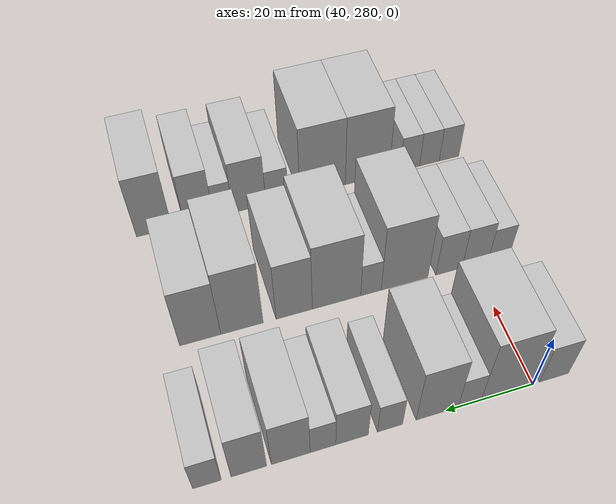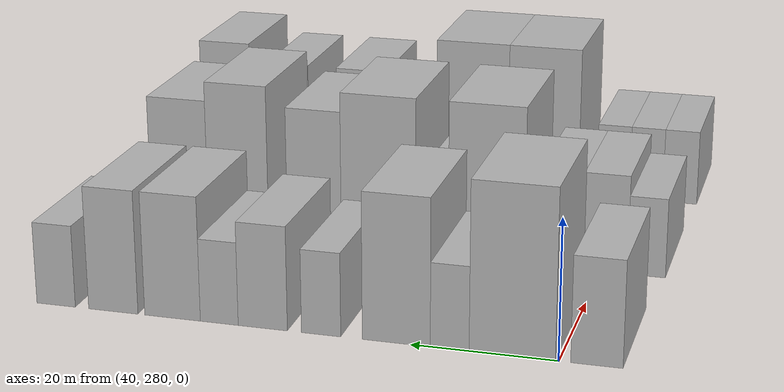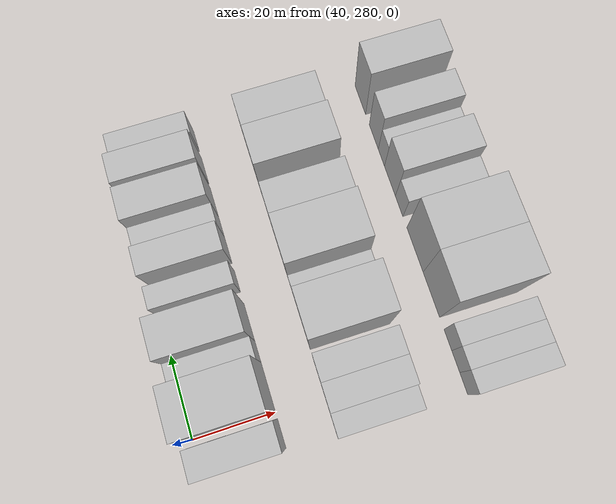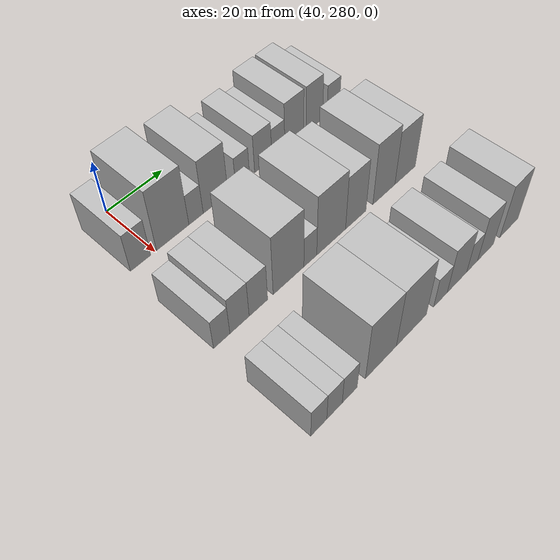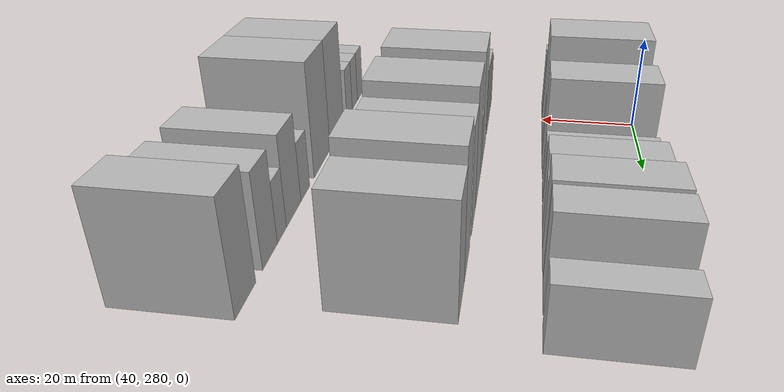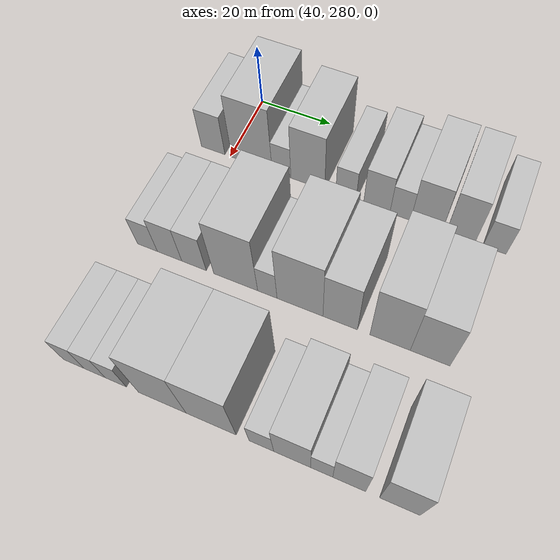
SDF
<sdf version="1.6">
 <world name="default">
  <model name="building_71">
   <static>1</static>
   <pose>50.0000 275.0531 0 0.000000 0.000000 0.000000</pose>
   <link name="link">
    <pose>0 0 7.50 0 0 0</pose>
    <collision name="collision"><geometry><box><size>20.0000 6.8625 15.0000</size></box></geometry></collision>
    <visual name="visual">
     <cast_shadows>0</cast_shadows>
     <geometry><box><size>20.0000 6.8625 15.0000</size></box></geometry>
     <material>
      <script>
       <uri>model://HANNAS_wall/materials/scripts</uri>
       <uri>model://HANNAS_wall/materials/textures</uri>
       <name>vrc/HANNAS_wall</name>
      </script>
     </material>
    </visual>
   </link>
  </model>
  <model name="building_72">
   <static>1</static>
   <pose>50.0000 286.2533 0 0.000000 0.000000 0.000000</pose>
   <link name="link">
    <pose>0 0 12.00 0 0 0</pose>
    <collision name="collision"><geometry><box><size>20.0000 11.5379 24.0000</size></box></geometry></collision>
    <visual name="visual">
     <cast_shadows>0</cast_shadows>
     <geometry><box><size>20.0000 11.5379 24.0000</size></box></geometry>
     <material>
      <script>
       <uri>model://HANNAS_wall/materials/scripts</uri>
       <uri>model://HANNAS_wall/materials/textures</uri>
       <name>vrc/HANNAS_wall</name>
      </script>
     </material>
    </visual>
   </link>
  </model>
  <model name="building_73">
   <static>1</static>
   <pose>50.0000 294.6577 0 0.000000 0.000000 0.000000</pose>
   <link name="link">
    <pose>0 0 6.00 0 0 0</pose>
    <collision name="collision"><geometry><box><size>20.0000 5.2709 12.0000</size></box></geometry></collision>
    <visual name="visual">
     <cast_shadows>0</cast_shadows>
     <geometry><box><size>20.0000 5.2709 12.0000</size></box></geometry>
     <material>
      <script>
       <uri>model://HANNAS_wall/materials/scripts</uri>
       <uri>model://HANNAS_wall/materials/textures</uri>
       <name>vrc/HANNAS_wall</name>
      </script>
     </material>
    </visual>
   </link>
  </model>
  <model name="building_74">
   <static>1</static>
   <pose>50.0000 301.9793 0 0.000000 0.000000 0.000000</pose>
   <link name="link">
    <pose>0 0 10.50 0 0 0</pose>
    <collision name="collision"><geometry><box><size>20.0000 9.3724 21.0000</size></box></geometry></collision>
    <visual name="visual">
     <cast_shadows>0</cast_shadows>
     <geometry><box><size>20.0000 9.3724 21.0000</size></box></geometry>
     <material>
      <script>
       <uri>model://HANNAS_wall/materials/scripts</uri>
       <uri>model://HANNAS_wall/materials/textures</uri>
       <name>vrc/HANNAS_wall</name>
      </script>
     </material>
    </visual>
   </link>
  </model>
  <model name="building_75">
   <static>1</static>
   <pose>50.0000 312.4241 0 0.000000 0.000000 0.000000</pose>
   <link name="link">
    <pose>0 0 6.00 0 0 0</pose>
    <collision name="collision"><geometry><box><size>20.0000 5.5172 12.0000</size></box></geometry></collision>
    <visual name="visual">
     <cast_shadows>0</cast_shadows>
     <geometry><box><size>20.0000 5.5172 12.0000</size></box></geometry>
     <material>
      <script>
       <uri>model://HANNAS_wall/materials/scripts</uri>
       <uri>model://HANNAS_wall/materials/textures</uri>
       <name>vrc/HANNAS_wall</name>
      </script>
     </material>
    </visual>
   </link>
  </model>
  <model name="building_76">
   <static>1</static>
   <pose>50.0000 320.6910 0 0.000000 0.000000 0.000000</pose>
   <link name="link">
    <pose>0 0 7.50 0 0 0</pose>
    <collision name="collision"><geometry><box><size>20.0000 7.0168 15.0000</size></box></geometry></collision>
    <visual name="visual">
     <cast_shadows>0</cast_shadows>
     <geometry><box><size>20.0000 7.0168 15.0000</size></box></geometry>
     <material>
      <script>
       <uri>model://HANNAS_wall/materials/scripts</uri>
       <uri>model://HANNAS_wall/materials/textures</uri>
       <name>vrc/HANNAS_wall</name>
      </script>
     </material>
    </visual>
   </link>
  </model>
  <model name="building_77">
   <static>1</static>
   <pose>50.0000 326.9324 0 0.000000 0.000000 0.000000</pose>
   <link name="link">
    <pose>0 0 6.00 0 0 0</pose>
    <collision name="collision"><geometry><box><size>20.0000 5.4659 12.0000</size></box></geometry></collision>
    <visual name="visual">
     <cast_shadows>0</cast_shadows>
     <geometry><box><size>20.0000 5.4659 12.0000</size></box></geometry>
     <material>
      <script>
       <uri>model://HANNAS_wall/materials/scripts</uri>
       <uri>model://HANNAS_wall/materials/textures</uri>
       <name>vrc/HANNAS_wall</name>
      </script>
     </material>
    </visual>
   </link>
  </model>
  <model name="building_78">
   <static>1</static>
   <pose>50.0000 333.7338 0 0.000000 0.000000 0.000000</pose>
   <link name="link">
    <pose>0 0 9.00 0 0 0</pose>
    <collision name="collision"><geometry><box><size>20.0000 8.1369 18.0000</size></box></geometry></collision>
    <visual name="visual">
     <cast_shadows>0</cast_shadows>
     <geometry><box><size>20.0000 8.1369 18.0000</size></box></geometry>
     <material>
      <script>
       <uri>model://HANNAS_wall/materials/scripts</uri>
       <uri>model://HANNAS_wall/materials/textures</uri>
       <name>vrc/HANNAS_wall</name>
      </script>
     </material>
    </visual>
   </link>
  </model>
  <model name="building_79">
   <static>1</static>
   <pose>50.0000 342.4698 0 0.000000 0.000000 0.000000</pose>
   <link name="link">
    <pose>0 0 9.00 0 0 0</pose>
    <collision name="collision"><geometry><box><size>20.0000 7.3350 18.0000</size></box></geometry></collision>
    <visual name="visual">
     <cast_shadows>0</cast_shadows>
     <geometry><box><size>20.0000 7.3350 18.0000</size></box></geometry>
     <material>
      <script>
       <uri>model://HANNAS_wall/materials/scripts</uri>
       <uri>model://HANNAS_wall/materials/textures</uri>
       <name>vrc/HANNAS_wall</name>
      </script>
     </material>
    </visual>
   </link>
  </model>
  <model name="building_80">
   <static>1</static>
   <pose>50.0000 351.0339 0 0.000000 0.000000 0.000000</pose>
   <link name="link">
    <pose>0 0 6.00 0 0 0</pose>
    <collision name="collision"><geometry><box><size>20.0000 5.7931 12.0000</size></box></geometry></collision>
    <visual name="visual">
     <cast_shadows>0</cast_shadows>
     <geometry><box><size>20.0000 5.7931 12.0000</size></box></geometry>
     <material>
      <script>
       <uri>model://HANNAS_wall/materials/scripts</uri>
       <uri>model://HANNAS_wall/materials/textures</uri>
       <name>vrc/HANNAS_wall</name>
      </script>
     </material>
    </visual>
   </link>
  </model>
  <model name="building_148">
   <static>1</static>
   <pose>82.0000 273.3419 0 0.000000 0.000000 0.000000</pose>
   <link name="link">
    <pose>0 0 6.00 0 0 0</pose>
    <collision name="collision"><geometry><box><size>20.0000 5.5061 12.0000</size></box></geometry></collision>
    <visual name="visual">
     <cast_shadows>0</cast_shadows>
     <geometry><box><size>20.0000 5.5061 12.0000</size></box></geometry>
     <material>
      <script>
       <uri>model://HANNAS_wall/materials/scripts</uri>
       <uri>model://HANNAS_wall/materials/textures</uri>
       <name>vrc/HANNAS_wall</name>
      </script>
     </material>
    </visual>
   </link>
  </model>
  <model name="building_149">
   <static>1</static>
   <pose>82.0000 279.4212 0 0.000000 0.000000 0.000000</pose>
   <link name="link">
    <pose>0 0 7.50 0 0 0</pose>
    <collision name="collision"><geometry><box><size>20.0000 6.6526 15.0000</size></box></geometry></collision>
    <visual name="visual">
     <cast_shadows>0</cast_shadows>
     <geometry><box><size>20.0000 6.6526 15.0000</size></box></geometry>
     <material>
      <script>
       <uri>model://HANNAS_wall/materials/scripts</uri>
       <uri>model://HANNAS_wall/materials/textures</uri>
       <name>vrc/HANNAS_wall</name>
      </script>
     </material>
    </visual>
   </link>
  </model>
  <model name="building_150">
   <static>1</static>
   <pose>82.0000 286.0291 0 0.000000 0.000000 0.000000</pose>
   <link name="link">
    <pose>0 0 7.50 0 0 0</pose>
    <collision name="collision"><geometry><box><size>20.0000 6.5633 15.0000</size></box></geometry></collision>
    <visual name="visual">
     <cast_shadows>0</cast_shadows>
     <geometry><box><size>20.0000 6.5633 15.0000</size></box></geometry>
     <material>
      <script>
       <uri>model://HANNAS_wall/materials/scripts</uri>
       <uri>model://HANNAS_wall/materials/textures</uri>
       <name>vrc/HANNAS_wall</name>
      </script>
     </material>
    </visual>
   </link>
  </model>
  <model name="building_151">
   <static>1</static>
   <pose>82.0000 297.0603 0 0.000000 0.000000 0.000000</pose>
   <link name="link">
    <pose>0 0 12.00 0 0 0</pose>
    <collision name="collision"><geometry><box><size>20.0000 11.4991 24.0000</size></box></geometry></collision>
    <visual name="visual">
     <cast_shadows>0</cast_shadows>
     <geometry><box><size>20.0000 11.4991 24.0000</size></box></geometry>
     <material>
      <script>
       <uri>model://HANNAS_wall/materials/scripts</uri>
       <uri>model://HANNAS_wall/materials/textures</uri>
       <name>vrc/HANNAS_wall</name>
      </script>
     </material>
    </visual>
   </link>
  </model>
  <model name="building_152">
   <static>1</static>
   <pose>82.0000 305.2937 0 0.000000 0.000000 0.000000</pose>
   <link name="link">
    <pose>0 0 6.00 0 0 0</pose>
    <collision name="collision"><geometry><box><size>20.0000 4.9678 12.0000</size></box></geometry></collision>
    <visual name="visual">
     <cast_shadows>0</cast_shadows>
     <geometry><box><size>20.0000 4.9678 12.0000</size></box></geometry>
     <material>
      <script>
       <uri>model://HANNAS_wall/materials/scripts</uri>
       <uri>model://HANNAS_wall/materials/textures</uri>
       <name>vrc/HANNAS_wall</name>
      </script>
     </material>
    </visual>
   </link>
  </model>
  <model name="building_153">
   <static>1</static>
   <pose>82.0000 313.5528 0 0.000000 0.000000 0.000000</pose>
   <link name="link">
    <pose>0 0 12.00 0 0 0</pose>
    <collision name="collision"><geometry><box><size>20.0000 11.5504 24.0000</size></box></geometry></collision>
    <visual name="visual">
     <cast_shadows>0</cast_shadows>
     <geometry><box><size>20.0000 11.5504 24.0000</size></box></geometry>
     <material>
      <script>
       <uri>model://HANNAS_wall/materials/scripts</uri>
       <uri>model://HANNAS_wall/materials/textures</uri>
       <name>vrc/HANNAS_wall</name>
      </script>
     </material>
    </visual>
   </link>
  </model>
  <model name="building_154">
   <static>1</static>
   <pose>82.0000 323.5786 0 0.000000 0.000000 0.000000</pose>
   <link name="link">
    <pose>0 0 10.50 0 0 0</pose>
    <collision name="collision"><geometry><box><size>20.0000 8.5012 21.0000</size></box></geometry></collision>
    <visual name="visual">
     <cast_shadows>0</cast_shadows>
     <geometry><box><size>20.0000 8.5012 21.0000</size></box></geometry>
     <material>
      <script>
       <uri>model://HANNAS_wall/materials/scripts</uri>
       <uri>model://HANNAS_wall/materials/textures</uri>
       <name>vrc/HANNAS_wall</name>
      </script>
     </material>
    </visual>
   </link>
  </model>
  <model name="building_155">
   <static>1</static>
   <pose>82.0000 335.6665 0 0.000000 0.000000 0.000000</pose>
   <link name="link">
    <pose>0 0 12.00 0 0 0</pose>
    <collision name="collision"><geometry><box><size>20.0000 9.6745 24.0000</size></box></geometry></collision>
    <visual name="visual">
     <cast_shadows>0</cast_shadows>
     <geometry><box><size>20.0000 9.6745 24.0000</size></box></geometry>
     <material>
      <script>
       <uri>model://HANNAS_wall/materials/scripts</uri>
       <uri>model://HANNAS_wall/materials/textures</uri>
       <name>vrc/HANNAS_wall</name>
      </script>
     </material>
    </visual>
   </link>
  </model>
  <model name="building_156">
   <static>1</static>
   <pose>82.0000 345.1514 0 0.000000 0.000000 0.000000</pose>
   <link name="link">
    <pose>0 0 10.50 0 0 0</pose>
    <collision name="collision"><geometry><box><size>20.0000 9.2952 21.0000</size></box></geometry></collision>
    <visual name="visual">
     <cast_shadows>0</cast_shadows>
     <geometry><box><size>20.0000 9.2952 21.0000</size></box></geometry>
     <material>
      <script>
       <uri>model://HANNAS_wall/materials/scripts</uri>
       <uri>model://HANNAS_wall/materials/textures</uri>
       <name>vrc/HANNAS_wall</name>
      </script>
     </material>
    </visual>
   </link>
  </model>
  <model name="building_223">
   <static>1</static>
   <pose>114.0000 272.7426 0 0.000000 0.000000 0.000000</pose>
   <link name="link">
    <pose>0 0 6.00 0 0 0</pose>
    <collision name="collision"><geometry><box><size>20.0000 5.4113 12.0000</size></box></geometry></collision>
    <visual name="visual">
     <cast_shadows>0</cast_shadows>
     <geometry><box><size>20.0000 5.4113 12.0000</size></box></geometry>
     <material>
      <script>
       <uri>model://HANNAS_wall/materials/scripts</uri>
       <uri>model://HANNAS_wall/materials/textures</uri>
       <name>vrc/HANNAS_wall</name>
      </script>
     </material>
    </visual>
   </link>
  </model>
  <model name="building_224">
   <static>1</static>
   <pose>114.0000 278.1230 0 0.000000 0.000000 0.000000</pose>
   <link name="link">
    <pose>0 0 6.00 0 0 0</pose>
    <collision name="collision"><geometry><box><size>20.0000 5.3495 12.0000</size></box></geometry></collision>
    <visual name="visual">
     <cast_shadows>0</cast_shadows>
     <geometry><box><size>20.0000 5.3495 12.0000</size></box></geometry>
     <material>
      <script>
       <uri>model://HANNAS_wall/materials/scripts</uri>
       <uri>model://HANNAS_wall/materials/textures</uri>
       <name>vrc/HANNAS_wall</name>
      </script>
     </material>
    </visual>
   </link>
  </model>
  <model name="building_225">
   <static>1</static>
   <pose>114.0000 283.4554 0 0.000000 0.000000 0.000000</pose>
   <link name="link">
    <pose>0 0 6.00 0 0 0</pose>
    <collision name="collision"><geometry><box><size>20.0000 5.3153 12.0000</size></box></geometry></collision>
    <visual name="visual">
     <cast_shadows>0</cast_shadows>
     <geometry><box><size>20.0000 5.3153 12.0000</size></box></geometry>
     <material>
      <script>
       <uri>model://HANNAS_wall/materials/scripts</uri>
       <uri>model://HANNAS_wall/materials/textures</uri>
       <name>vrc/HANNAS_wall</name>
      </script>
     </material>
    </visual>
   </link>
  </model>
  <model name="building_226">
   <static>1</static>
   <pose>114.0000 294.9483 0 0.000000 0.000000 0.000000</pose>
   <link name="link">
    <pose>0 0 12.00 0 0 0</pose>
    <collision name="collision"><geometry><box><size>20.0000 11.6706 24.0000</size></box></geometry></collision>
    <visual name="visual">
     <cast_shadows>0</cast_shadows>
     <geometry><box><size>20.0000 11.6706 24.0000</size></box></geometry>
     <material>
      <script>
       <uri>model://HANNAS_wall/materials/scripts</uri>
       <uri>model://HANNAS_wall/materials/textures</uri>
       <name>vrc/HANNAS_wall</name>
      </script>
     </material>
    </visual>
   </link>
  </model>
  <model name="building_227">
   <static>1</static>
   <pose>114.0000 306.7397 0 0.000000 0.000000 0.000000</pose>
   <link name="link">
    <pose>0 0 12.00 0 0 0</pose>
    <collision name="collision"><geometry><box><size>20.0000 11.9120 24.0000</size></box></geometry></collision>
    <visual name="visual">
     <cast_shadows>0</cast_shadows>
     <geometry><box><size>20.0000 11.9120 24.0000</size></box></geometry>
     <material>
      <script>
       <uri>model://HANNAS_wall/materials/scripts</uri>
       <uri>model://HANNAS_wall/materials/textures</uri>
       <name>vrc/HANNAS_wall</name>
      </script>
     </material>
    </visual>
   </link>
  </model>
  <model name="building_228">
   <static>1</static>
   <pose>114.0000 318.5400 0 0.000000 0.000000 0.000000</pose>
   <link name="link">
    <pose>0 0 6.00 0 0 0</pose>
    <collision name="collision"><geometry><box><size>20.0000 5.6887 12.0000</size></box></geometry></collision>
    <visual name="visual">
     <cast_shadows>0</cast_shadows>
     <geometry><box><size>20.0000 5.6887 12.0000</size></box></geometry>
     <material>
      <script>
       <uri>model://HANNAS_wall/materials/scripts</uri>
       <uri>model://HANNAS_wall/materials/textures</uri>
       <name>vrc/HANNAS_wall</name>
      </script>
     </material>
    </visual>
   </link>
  </model>
  <model name="building_229">
   <static>1</static>
   <pose>114.0000 325.5938 0 0.000000 0.000000 0.000000</pose>
   <link name="link">
    <pose>0 0 9.00 0 0 0</pose>
    <collision name="collision"><geometry><box><size>20.0000 8.4189 18.0000</size></box></geometry></collision>
    <visual name="visual">
     <cast_shadows>0</cast_shadows>
     <geometry><box><size>20.0000 8.4189 18.0000</size></box></geometry>
     <material>
      <script>
       <uri>model://HANNAS_wall/materials/scripts</uri>
       <uri>model://HANNAS_wall/materials/textures</uri>
       <name>vrc/HANNAS_wall</name>
      </script>
     </material>
    </visual>
   </link>
  </model>
  <model name="building_230">
   <static>1</static>
   <pose>114.0000 332.2318 0 0.000000 0.000000 0.000000</pose>
   <link name="link">
    <pose>0 0 6.00 0 0 0</pose>
    <collision name="collision"><geometry><box><size>20.0000 4.8570 12.0000</size></box></geometry></collision>
    <visual name="visual">
     <cast_shadows>0</cast_shadows>
     <geometry><box><size>20.0000 4.8570 12.0000</size></box></geometry>
     <material>
      <script>
       <uri>model://HANNAS_wall/materials/scripts</uri>
       <uri>model://HANNAS_wall/materials/textures</uri>
       <name>vrc/HANNAS_wall</name>
      </script>
     </material>
    </visual>
   </link>
  </model>
  <model name="building_231">
   <static>1</static>
   <pose>114.0000 338.2676 0 0.000000 0.000000 0.000000</pose>
   <link name="link">
    <pose>0 0 9.00 0 0 0</pose>
    <collision name="collision"><geometry><box><size>20.0000 7.2148 18.0000</size></box></geometry></collision>
    <visual name="visual">
     <cast_shadows>0</cast_shadows>
     <geometry><box><size>20.0000 7.2148 18.0000</size></box></geometry>
     <material>
      <script>
       <uri>model://HANNAS_wall/materials/scripts</uri>
       <uri>model://HANNAS_wall/materials/textures</uri>
       <name>vrc/HANNAS_wall</name>
      </script>
     </material>
    </visual>
   </link>
  </model>
  <model name="building_232">
   <static>1</static>
   <pose>114.0000 349.2075 0 0.000000 0.000000 0.000000</pose>
   <link name="link">
    <pose>0 0 10.50 0 0 0</pose>
    <collision name="collision"><geometry><box><size>20.0000 8.6649 21.0000</size></box></geometry></collision>
    <visual name="visual">
     <cast_shadows>0</cast_shadows>
     <geometry><box><size>20.0000 8.6649 21.0000</size></box></geometry>
     <material>
      <script>
       <uri>model://HANNAS_wall/materials/scripts</uri>
       <uri>model://HANNAS_wall/materials/textures</uri>
       <name>vrc/HANNAS_wall</name>
      </script>
     </material>
    </visual>
   </link>
  </model>
 </world>
</sdf>
